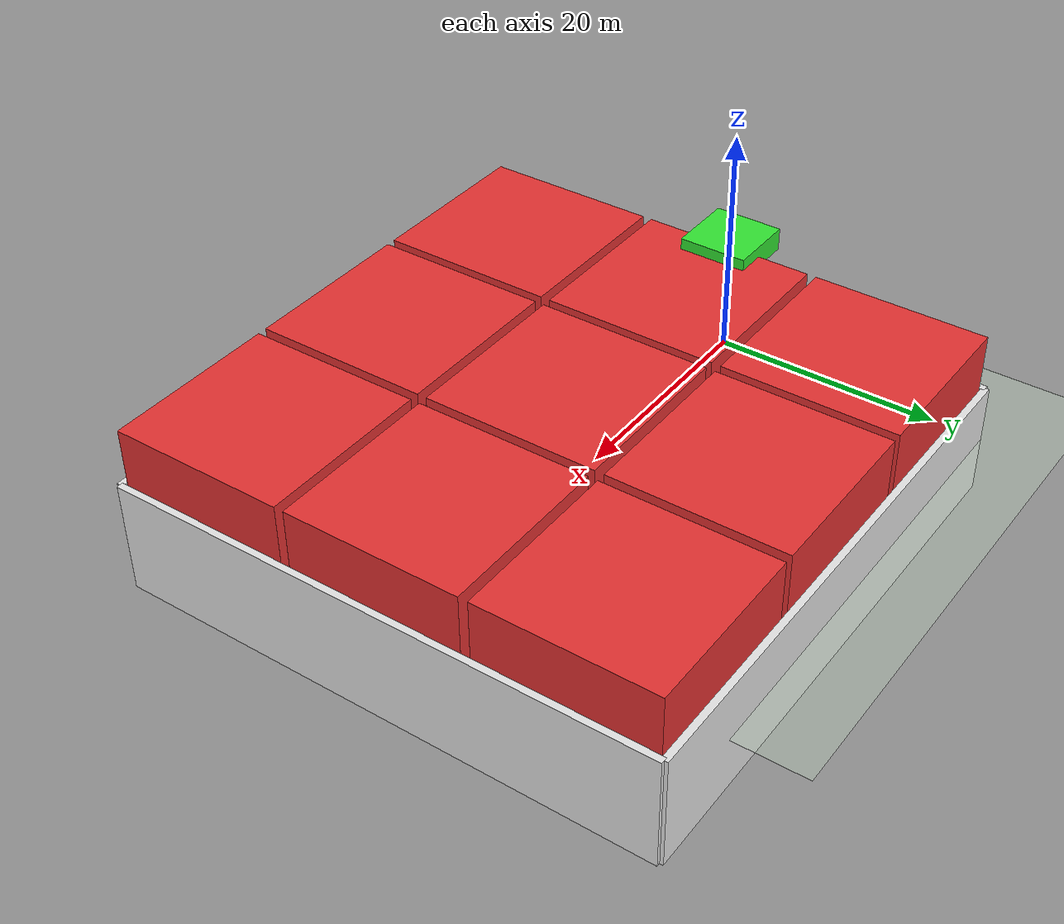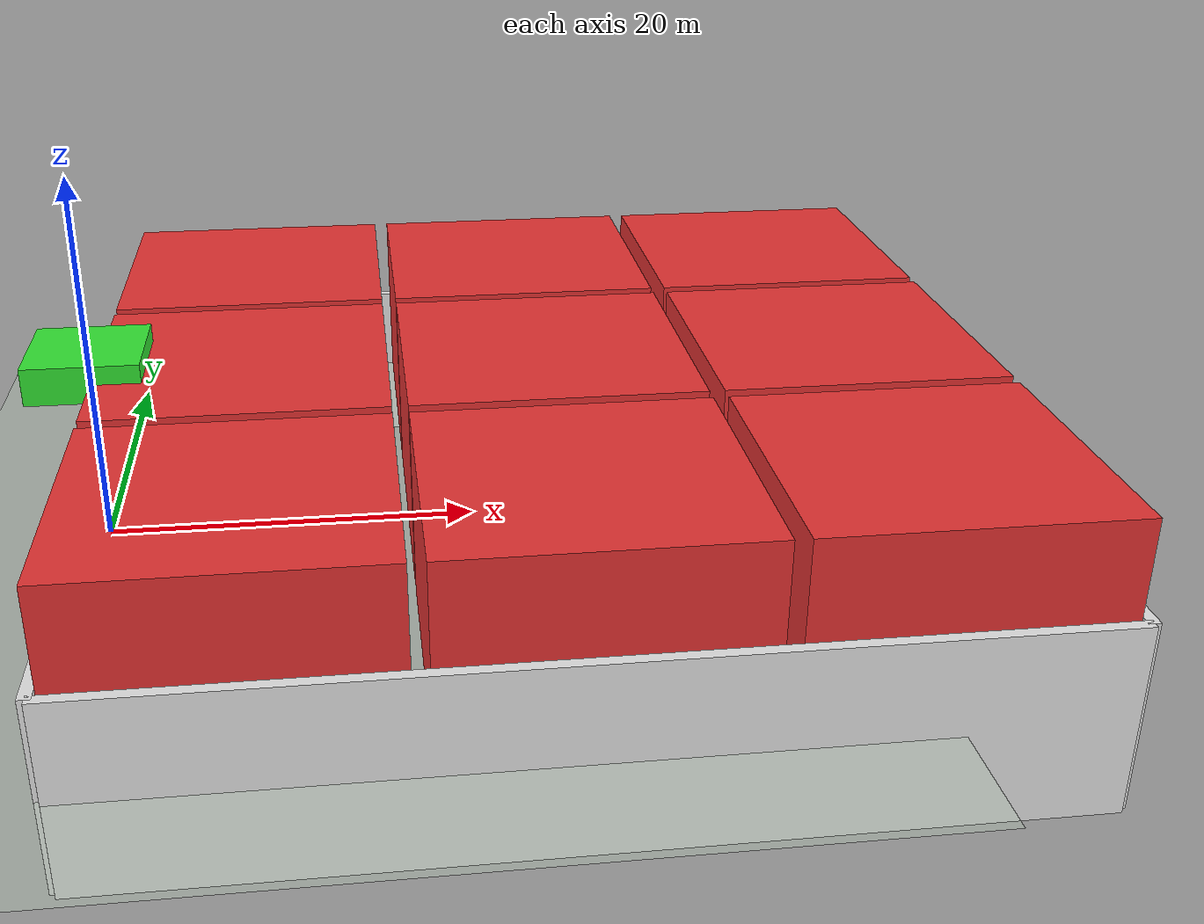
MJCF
<mujoco model="ant">
  <compiler angle="degree" coordinate="local" inertiafromgeom="true" settotalmass="4308000"/>
  <option integrator="RK4" timestep="0.005"/>
  <custom>
    <numeric data="0.0 0.0 0.55 1.0 0.0 0.0 0.0 0.0 1.0 0.0 -1.0 0.0 -1.0 0.0 1.0" name="init_qpos"/>
  </custom>
  <default>
    <joint armature="1" damping="1" limited="true"/>
    <geom conaffinity="0" condim="3" density="5.0" friction="1 0.5 0.5" margin="0.01" rgba="0.8 0.6 0.4 1" material="geom"/>
  </default>
    <asset>
        <texture name="monstertex" type="cube" file="monstertex.png" gridsize="3 4" gridlayout=".U..LDRB.F.."/>
        <texture type="skybox" builtin="gradient" rgb1=".1 .12 .15" rgb2="0 0 0" width="100" height="100"/>
        <texture builtin="checker" height="100" name="texplane" rgb1=".1 .1 .1" rgb2=".15 .15 0.15" type="2d" width="100"/>
        <material name="MatPlane" reflectance="0.5" shininess="1" specular="1" texrepeat="50 50" texture="texplane"/>
        <texture builtin="flat" height="1278" mark="cross" markrgb="1 1 1" name="texgeom" random="0.01" rgb1="0.8 0.6 0.4" rgb2="0.8 0.6 0.4" type="cube" width="127"/>
        <material name="monstermat" texture="monstertex" texuniform="true"/>
        <material name="geom" texture="texgeom" texuniform="true"/>
    </asset>
  <worldbody>
    <light cutoff="100" diffuse="1 1 1" dir="-0 0 -1.3" directional="true" exponent="1" pos="0 0 1.3" specular=".1 .1 .1"/>
    <geom conaffinity="1" condim="3" material="MatPlane" name="floor" pos="0 0 0" rgba="0.8 0.9 0.8 1" size="40 40 40" type="plane"/>
    <body name="torso" pos="2 0 0.6">
      <geom name="torso_geom" pos="0 0 0" size="0.25" type="sphere"/>
      <geom name="head" density="0.01" rgba="1.0 0.5 0.3 1" pos="0.4 0 0.25" size="0.25" type="sphere"/>
      <joint armature="0" damping="0" limited="false" margin="0.01" name="root" pos="0 0 0" type="free"/>
      <body name="front_left_leg" pos="0 0 0">
        <geom fromto="0.0 0.0 0.0 0.2 0.2 0.0" name="aux_1_geom" size="0.08" type="capsule"/>
        <body name="aux_1" pos="0.2 0.2 0">
          <joint axis="0 0 1" name="hip_1" pos="0.0 0.0 0.0" range="-30 30" type="hinge"/>
          <geom fromto="0.0 0.0 0.0 0.2 0.2 0.0" name="left_leg_geom" size="0.08" type="capsule"/>
          <body pos="0.2 0.2 0">
            <joint axis="-1 1 0" name="ankle_1" pos="0.0 0.0 0.0" range="30 70" type="hinge"/>
            <geom fromto="0.0 0.0 0.0 0.4 0.4 0.0" name="left_ankle_geom" size="0.08" type="capsule"/>
          </body>
        </body>
      </body>
      <body name="front_right_leg" pos="0 0 0">
        <geom fromto="0.0 0.0 0.0 -0.2 0.2 0.0" name="aux_2_geom" size="0.08" type="capsule"/>
        <body name="aux_2" pos="-0.2 0.2 0">
          <joint axis="0 0 1" name="hip_2" pos="0.0 0.0 0.0" range="-30 30" type="hinge"/>
          <geom fromto="0.0 0.0 0.0 -0.2 0.2 0.0" name="right_leg_geom" size="0.08" type="capsule"/>
          <body pos="-0.2 0.2 0">
            <joint axis="1 1 0" name="ankle_2" pos="0.0 0.0 0.0" range="-70 -30" type="hinge"/>
            <geom fromto="0.0 0.0 0.0 -0.4 0.4 0.0" name="right_ankle_geom" size="0.08" type="capsule"/>
          </body>
        </body>
      </body>
      <body name="back_leg" pos="0 0 0">
        <geom fromto="0.0 0.0 0.0 -0.2 -0.2 0.0" name="aux_3_geom" size="0.08" type="capsule"/>
        <body name="aux_3" pos="-0.2 -0.2 0">
          <joint axis="0 0 1" name="hip_3" pos="0.0 0.0 0.0" range="-30 30" type="hinge"/>
          <geom fromto="0.0 0.0 0.0 -0.2 -0.2 0.0" name="back_leg_geom" size="0.08" type="capsule"/>
          <body pos="-0.2 -0.2 0">
            <joint axis="-1 1 0" name="ankle_3" pos="0.0 0.0 0.0" range="-70 -30" type="hinge"/>
            <geom fromto="0.0 0.0 0.0 -0.4 -0.4 0.0" name="third_ankle_geom" size="0.08" type="capsule"/>
          </body>
        </body>
      </body>
      <body name="right_back_leg" pos="0 0 0">
        <geom fromto="0.0 0.0 0.0 0.2 -0.2 0.0" name="aux_4_geom" size="0.08" type="capsule"/>
        <body name="aux_4" pos="0.2 -0.2 0">
          <joint axis="0 0 1" name="hip_4" pos="0.0 0.0 0.0" range="-30 30" type="hinge"/>
          <geom fromto="0.0 0.0 0.0 0.2 -0.2 0.0" name="rightback_leg_geom" size="0.08" type="capsule"/>
          <body pos="0.2 -0.2 0">
            <joint axis="1 1 0" name="ankle_4" pos="0.0 0.0 0.0" range="30 70" type="hinge"/>
            <geom fromto="0.0 0.0 0.0 0.4 -0.4 0.0" name="fourth_ankle_geom" size="0.08" type="capsule"/>
          </body>
        </body>
      </body>
    </body>

    <geom pos="24 -24 0" conaffinity="1" rgba="0.9 0.9 0.9 1" density="0.001" size="24 0.3 5" type="box"/>
    <geom pos="24 24 0" conaffinity="1" rgba="0.9 0.9 0.9 1" density="0.001" size="24 0.3 5" type="box"/>
    <geom pos="0 0 0" conaffinity="1" rgba="0.9 0.9 0.9 1" density="0.001" size="0.3 24 5" type="box"/>
    <geom pos="48 0 0" conaffinity="1" rgba="0.9 0.9 0.9 1" density="0.001" size="0.3 24 5" type="box"/>

    <body name="00" pos="8 16 5">
      <joint armature="0" axis="0 1 0" damping="0" limited="false" pos="0 0 0" stiffness="0" type="slide"/>
      <geom pos="0 0 0" conaffinity="1" rgba="0.9 0.2 0.2 1" size="7.6 7.6 5" type="box"/>
    </body>
    <body name="01" pos="24 16 5">
      <joint armature="0" axis="0 1 0" damping="0" limited="false" pos="0 0 0" stiffness="0" type="slide"/>
      <geom pos="0 0 0" conaffinity="1" rgba="0.9 0.2 0.2 1" size="7.6 7.6 5" type="box"/>
    </body>
    <body name="02" pos="40 16 5">
      <joint armature="0" axis="0 1 0" damping="0" limited="false" pos="0 0 0" stiffness="0" type="slide"/>
      <geom pos="0 0 0" conaffinity="1" rgba="0.9 0.2 0.2 1" size="7.6 7.6 5" type="box"/>
    </body>

    <body name="10" pos="8 0 5">
      <joint armature="0" axis="0 1 0" damping="0" limited="false" pos="0 0 0" stiffness="0" type="slide"/>
      <geom pos="0 0 0" conaffinity="1" rgba="0.9 0.2 0.2 1" size="7.6 7.6 5" type="box"/>
    </body>
    <body name="11" pos="24 0 5">
      <joint armature="0" axis="0 1 0" damping="0" limited="false" pos="0 0 0" stiffness="0" type="slide"/>
      <geom pos="0 0 0" conaffinity="1" rgba="0.9 0.2 0.2 1" size="7.6 7.6 5" type="box"/>
    </body>
    <body name="12" pos="40 0 5">
      <joint armature="0" axis="0 1 0" damping="0" limited="false" pos="0 0 0" stiffness="0" type="slide"/>
      <geom pos="0 0 0" conaffinity="1" rgba="0.9 0.2 0.2 1" size="7.6 7.6 5" type="box"/>
    </body>

    <body name="20" pos="8 -16 5">
      <joint armature="0" axis="0 1 0" damping="0" limited="false" pos="0 0 0" stiffness="0" type="slide"/>
      <geom pos="0 0 0" conaffinity="1" rgba="0.9 0.2 0.2 1" size="7.6 7.6 5" type="box"/>
    </body>
    <body name="21" pos="24 -16 5">
      <joint armature="0" axis="0 1 0" damping="0" limited="false" pos="0 0 0" stiffness="0" type="slide"/>
      <geom pos="0 0 0" conaffinity="1" rgba="0.9 0.2 0.2 1" size="7.6 7.6 5" type="box"/>
    </body>
    <body name="22" pos="40 -16 5">
      <joint armature="0" axis="0 1 0" damping="0" limited="false" pos="0 0 0" stiffness="0" type="slide"/>
      <geom pos="0 0 0" conaffinity="1" rgba="0.9 0.2 0.2 1" size="7.6 7.6 5" type="box"/>
    </body>

    <body name="goal" pos="0 0 0">
      <joint armature="0" axis="1 0 0" damping="0" limited="false" pos="0 0 0" stiffness="0" type="slide"/>
      <joint armature="0" axis="0 1 0" damping="0" limited="false" pos="0 0 0" stiffness="0" type="slide"/>
      <geom pos="0 0 10" conaffinity="1" rgba="0.2 0.9 0.2 1" size="3 3 1" type="box"/>
    </body>

  </worldbody>
  <actuator>
    <motor ctrllimited="true" ctrlrange="-1.0 1.0" joint="hip_4" gear="150"/>
    <motor ctrllimited="true" ctrlrange="-1.0 1.0" joint="ankle_4" gear="150"/>
    <motor ctrllimited="true" ctrlrange="-1.0 1.0" joint="hip_1" gear="150"/>
    <motor ctrllimited="true" ctrlrange="-1.0 1.0" joint="ankle_1" gear="150"/>
    <motor ctrllimited="true" ctrlrange="-1.0 1.0" joint="hip_2" gear="150"/>
    <motor ctrllimited="true" ctrlrange="-1.0 1.0" joint="ankle_2" gear="150"/>
    <motor ctrllimited="true" ctrlrange="-1.0 1.0" joint="hip_3" gear="150"/>
    <motor ctrllimited="true" ctrlrange="-1.0 1.0" joint="ankle_3" gear="150"/>
  </actuator>
  <sensor>
    <jointpos name='pos_hip_1' joint='hip_1' />
    <jointpos name='pos_hip_2' joint='hip_2' />
    <jointpos name='pos_hip_3' joint='hip_3' />
    <jointpos name='pos_hip_4' joint='hip_4' />
    <jointpos name='pos_ankle_1' joint='ankle_1' />
    <jointpos name='pos_ankle_2' joint='ankle_2' />
    <jointpos name='pos_ankle_3' joint='ankle_3' />
    <jointpos name='pos_ankle_4' joint='ankle_4' />

    <jointvel name='vel_hip_1'   joint='hip_1' />
    <jointvel name='vel_hip_2'   joint='hip_2' />
    <jointvel name='vel_hip_3'   joint='hip_3' />
    <jointvel name='vel_hip_4'   joint='hip_4' />
    <jointvel name='vel_ankle_1' joint='ankle_1' />
    <jointvel name='vel_ankle_2' joint='ankle_2' />
    <jointvel name='vel_ankle_3' joint='ankle_3' />
    <jointvel name='vel_ankle_4' joint='ankle_4' />
  </sensor>
</mujoco>
